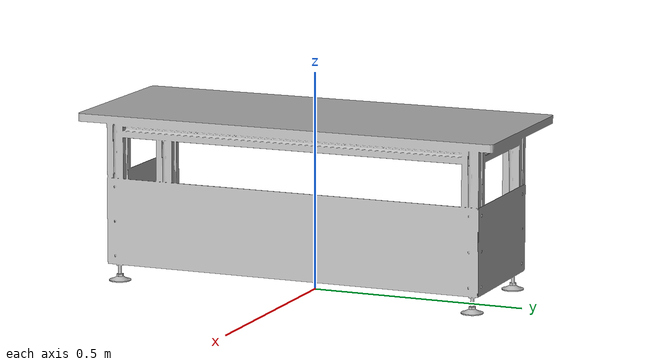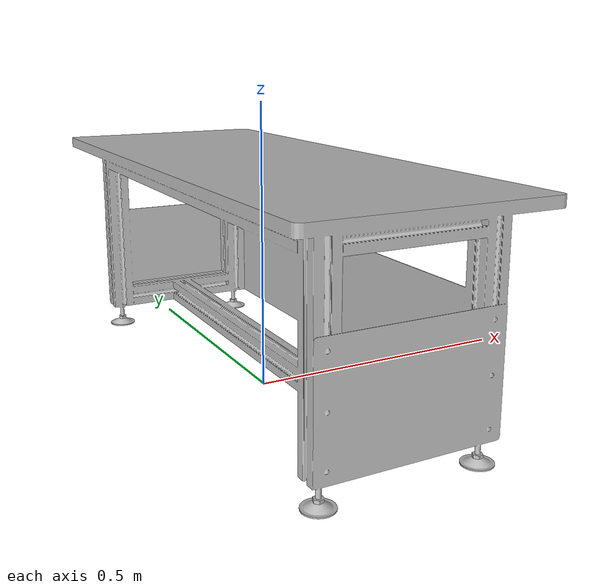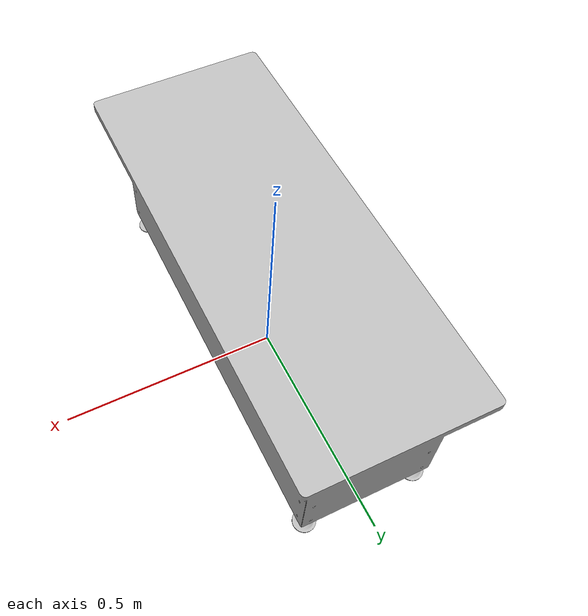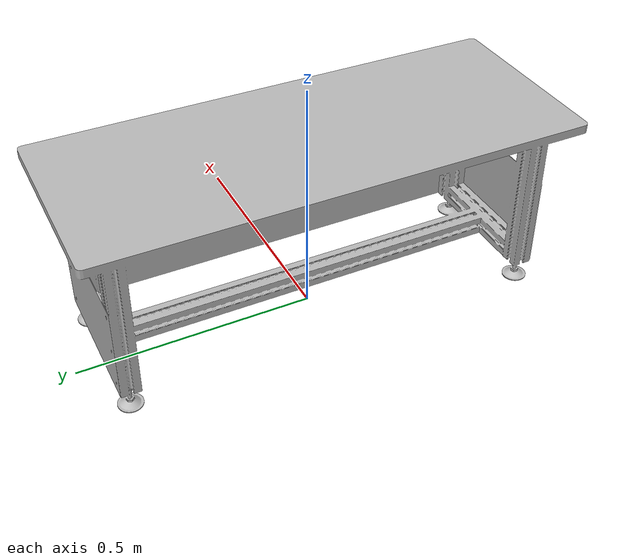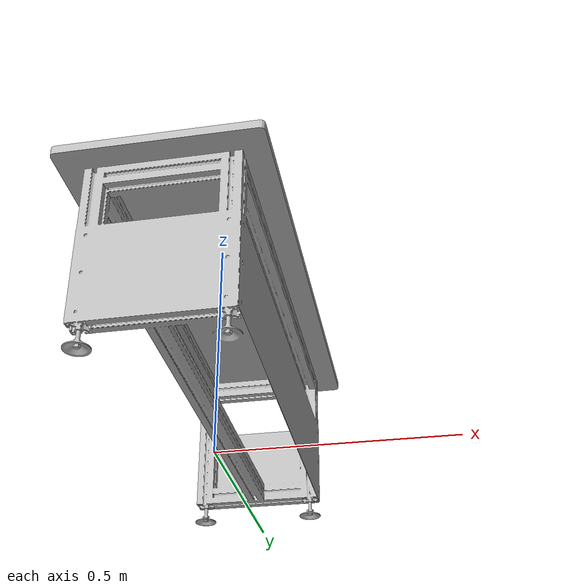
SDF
<?xml version='1.0'?>
<sdf version='1.6'>
  <model name='desk'>
    <link name='desk_base'>
      <pose frame=''>0 0 0 0 -0 0</pose>
      <inertial>
        <pose frame=''>0.002646 -0.000374 0.34281 0 -0 0</pose>
        <mass>10.682</mass>
        <inertia>
          <ixx>0.71437</ixx>
          <ixy>-8.1861e-14</ixy>
          <ixz>-7.1505e-14</ixz>
          <iyy>0.10962</iyy>
          <iyz>7.1747e-13</iyz>
          <izz>0.80403</izz>
        </inertia>
      </inertial>
      <self_collide>0</self_collide>
      <enable_wind>0</enable_wind>
      <kinematic>0</kinematic>
      <visual name='desk_base_visual'>
        <pose frame=''>0 0 0 0 -0 0</pose>
        <geometry>
          <mesh>
            <scale>1 1 1</scale>
            <uri>/root/hg_ws/src/workstation/all_world/models/desk/meshes/desk_base.STL</uri>
          </mesh>
        </geometry>
        <transparency>0</transparency>
        <cast_shadows>1</cast_shadows>
      </visual>
      <collision name='desk_base_collision'>
        <laser_retro>0</laser_retro>
        <max_contacts>10</max_contacts>
        <pose frame=''>0 0 0 0 -0 0</pose>
        <geometry>
          <mesh>
            <uri>/root/hg_ws/src/workstation/all_world/models/desk/meshes/desk_base.STL</uri>
            <scale>1 1 1</scale>
          </mesh>
        </geometry>
        <surface>
          <friction>
            <ode>
              <mu>1</mu>
              <mu2>1</mu2>
              <fdir1>0 0 0</fdir1>
              <slip1>0</slip1>
              <slip2>0</slip2>
            </ode>
            <torsional>
              <coefficient>1</coefficient>
              <patch_radius>0</patch_radius>
              <surface_radius>0</surface_radius>
              <use_patch_radius>1</use_patch_radius>
              <ode>
                <slip>0</slip>
              </ode>
            </torsional>
          </friction>
          <bounce>
            <restitution_coefficient>0</restitution_coefficient>
            <threshold>1e+06</threshold>
          </bounce>
          <contact>
            <collide_without_contact>0</collide_without_contact>
            <collide_without_contact_bitmask>1</collide_without_contact_bitmask>
            <collide_bitmask>1</collide_bitmask>
            <ode>
              <soft_cfm>0</soft_cfm>
              <soft_erp>0.2</soft_erp>
              <kp>1e+13</kp>
              <kd>1</kd>
              <max_vel>0.01</max_vel>
              <min_depth>0.001</min_depth>
            </ode>
            <bullet>
              <split_impulse>1</split_impulse>
              <split_impulse_penetration_threshold>-0.01</split_impulse_penetration_threshold>
              <soft_cfm>0</soft_cfm>
              <soft_erp>0.2</soft_erp>
              <kp>1e+13</kp>
              <kd>1</kd>
            </bullet>
          </contact>
        </surface>
      </collision>
    </link>
    <static>0</static>
    <allow_auto_disable>1</allow_auto_disable>
  </model>
</sdf>
